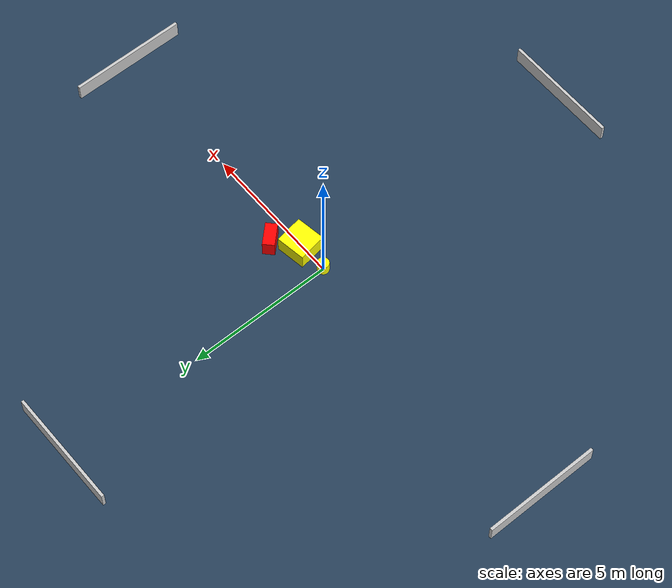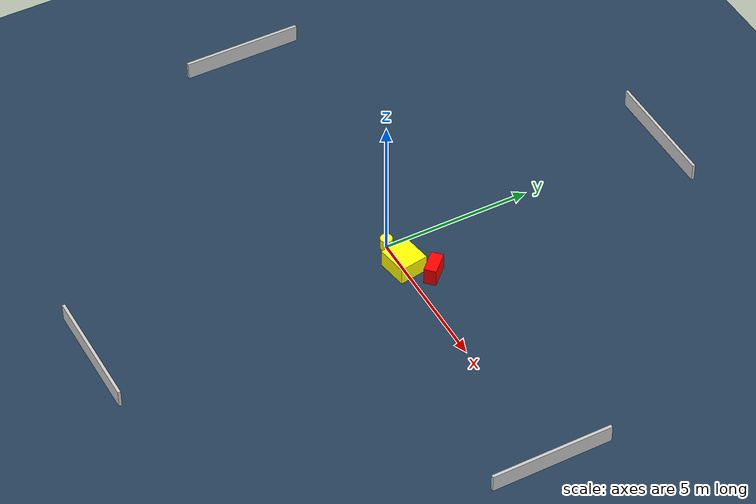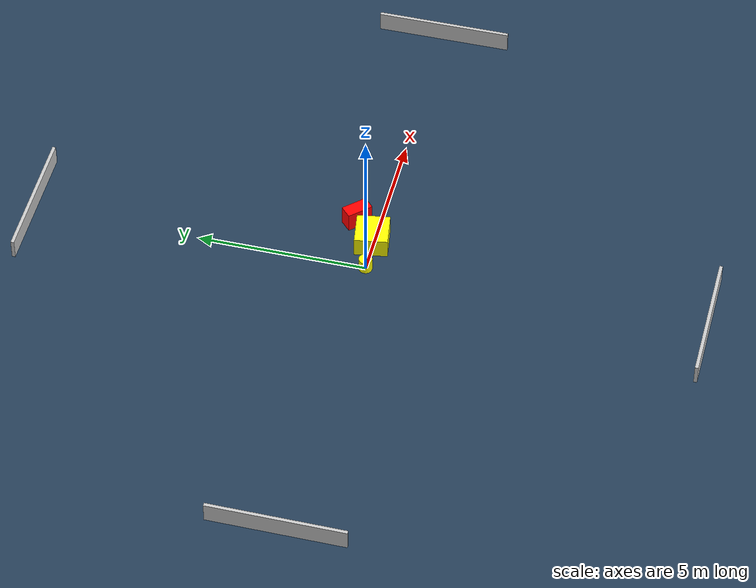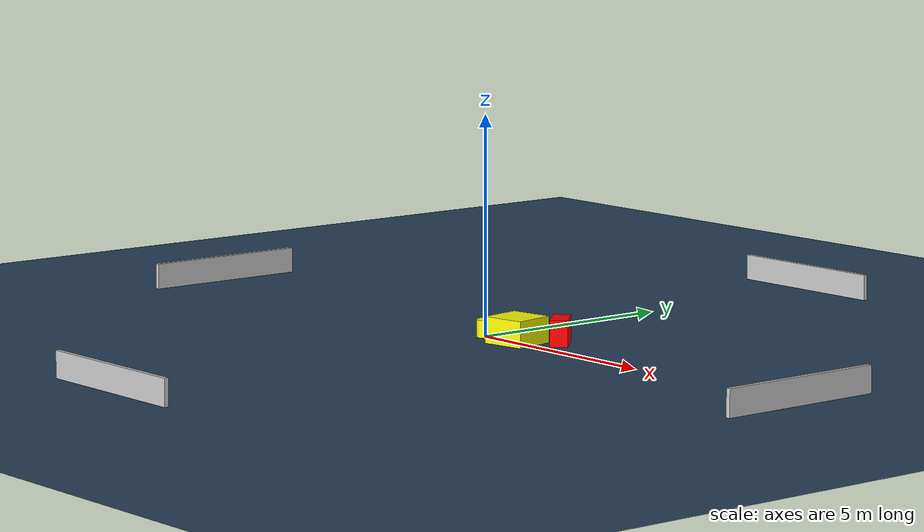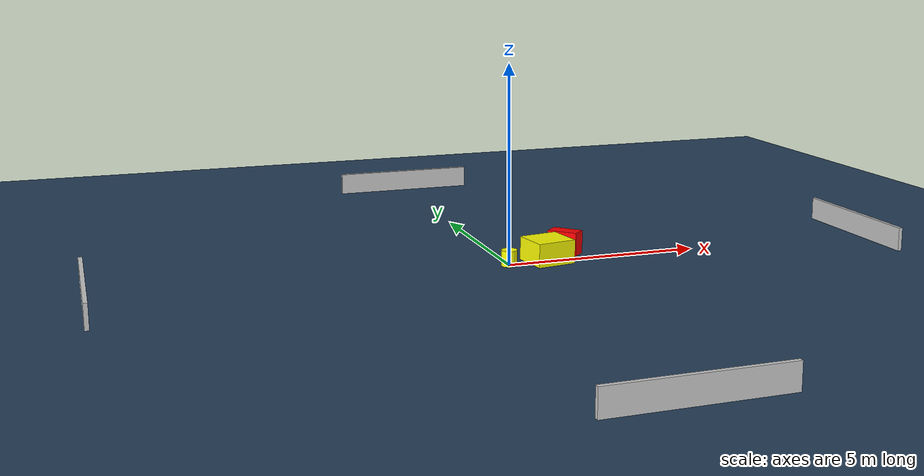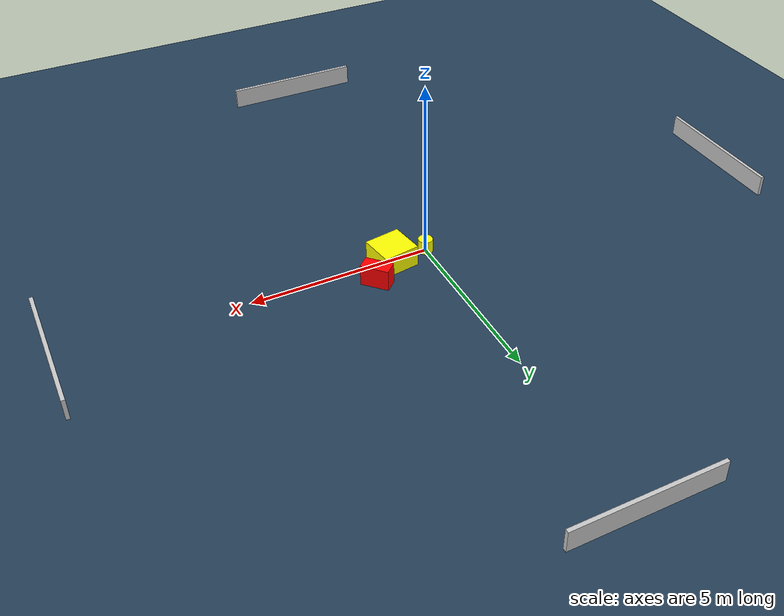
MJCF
<?xml version="1.0" ?>
<mujoco model="generated_environment">
  <option timestep="0.01" integrator="RK4" cone="elliptic"/>
  <default>
    <geom density="1"/>
  </default>
  <asset>
    <texture builtin="gradient" height="3072" name="skybox" rgb1="0.3 0.5 0.7" rgb2="0 0 0" type="skybox" width="512"/>
    <texture builtin="checker" height="300" name="groundplane" rgb1="0.2 0.3 0.4" rgb2="0.1 0.2 0.3" type="2d" width="300"/>
    <material name="groundplane" reflectance="0.2" texrepeat="5 5" texture="groundplane"/>
  </asset>
  <worldbody>
    <light dir="0 0 -1" directional="true" pos="0 0 1.5"/>
    <geom condim="3" friction="0.5 0.005 0.001" material="groundplane" name="floor" pos="0 0 0" size="0 0 0.05" type="plane"/>
    <body name="walls">
      <geom name="wall_1" condim="4" pos="-10.0 0.0 0.3" rgba="0.800000011920929 0.800000011920929 0.800000011920929 1.0" size="0.05 2.0 0.3" type="box"/>
      <geom name="wall_2" condim="4" pos="10.0 0.0 0.3" rgba="0.800000011920929 0.800000011920929 0.800000011920929 1.0" size="0.05 2.0 0.3" type="box"/>
      <geom name="wall_3" condim="4" pos="0.0 -10.0 0.3" rgba="0.800000011920929 0.800000011920929 0.800000011920929 1.0" size="2.0 0.05 0.3" type="box"/>
      <geom name="wall_4" condim="4" pos="0.0 10.0 0.3" rgba="0.800000011920929 0.800000011920929 0.800000011920929 1.0" size="2.0 0.05 0.3" type="box"/>
    </body>
    <body name="robot">
      <joint name="joint_x" type="slide" pos="0 0 0" axis="1 0 0"/>
      <joint name="joint_y" type="slide" pos="0 0 0" axis="0 1 0"/>
      <geom name="robot" type="cylinder" pos="0.0 0.0 0.2" size="0.2 0.2 0.0" mass="5.0" friction="1.0 0.005 0.0001" condim="4" rgba="1.0 1.0 0.0 1.0"/>
    </body>
    <body name="obstacle_1_movable">
      <geom name="obstacle_1_movable" condim="4" pos="1.0331880761287169 0.057311693446322115 0.3" euler="0 0 278.949383527213" friction="0.0 0.005 0.001" rgba="1.0 1.0 0.0 1.0" size="0.4869753771811094 0.507300604294119 0.3" type="box" mass="0.1"/>
      <joint type="free"/>
    </body>
    <body name="obstacle_2_static">
      <geom name="obstacle_2_static" condim="4" pos="1.7625334993454562 0.6912566017087127 0.3" euler="0 0 223.3919793548089" friction="0.0 0.005 0.001" rgba="1.0 0.0 0.0 1.0" size="0.20072093191086468 0.3932267399533613 0.3" type="box"/>
    </body>
  </worldbody>
  <actuator>
    <motor name="actuator_x" joint="joint_x" gear="1" ctrlrange="-1 1"/>
    <motor name="actuator_y" joint="joint_y" gear="1" ctrlrange="-1 1"/>
  </actuator>
</mujoco>
